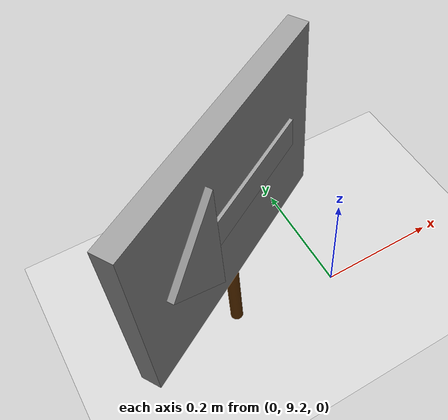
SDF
<sdf version="1.7">
 <world name="default">
  <model name="ground_plane">
   <static>1</static>
   <link name="link">
    <collision name="collision">
     <geometry><plane><normal>0 0 1</normal><size>100 100</size></plane></geometry>
     <surface>
      <contact><collide_bitmask>65535</collide_bitmask></contact>
      <friction><ode><mu>100</mu><mu2>50</mu2></ode></friction>
     </surface>
    </collision>
    <visual name="visual">
     <cast_shadows>0</cast_shadows>
     <geometry><plane><normal>0 0 1</normal><size>100 100</size></plane></geometry>
     <material>
      <script><uri>file://media/materials/scripts/gazebo.material</uri><name>Gazebo/Grey</name></script>
     </material>
    </visual>
   </link>
  </model>
  <model name="arrow_board_4">
   <link name="link_0">
    <inertial>
     <mass>1</mass>
     <inertia><ixx>0.145833</ixx><ixy>0</ixy><ixz>0</ixz><iyy>0.145833</iyy><iyz>0</iyz><izz>0.125</izz></inertia>
    </inertial>
    <pose>-0.01675 0.00625 0.1625 0 -0 0</pose>
    <gravity>0</gravity>
    <visual name="visual">
     <geometry><cylinder><radius>0.01</radius><length>0.3</length></cylinder></geometry>
     <material>
      <lighting>1</lighting>
      <script><uri>file://media/materials/scripts/gazebo.material</uri><name>Gazebo/Grey</name></script>
      <shader type="pixel"><normal_map>__default__</normal_map></shader>
      <ambient>0.4 0.2 0 1</ambient>
      <diffuse>0.4 0.2 0 1</diffuse>
      <specular>0 0 0 1</specular>
      <emissive>0 0 0 1</emissive>
     </material>
    </visual>
    <collision name="collision">
     <geometry><cylinder><radius>0.01</radius><length>0.3</length></cylinder></geometry>
     <surface>
      <friction>
       <ode><mu>1</mu><mu2>1</mu2><fdir1>0 0 0</fdir1><slip1>0</slip1><slip2>0</slip2></ode>
       <torsional>
        <coefficient>1</coefficient>
        <patch_radius>0</patch_radius>
        <surface_radius>0</surface_radius>
        <use_patch_radius>1</use_patch_radius>
        <ode><slip>0</slip></ode>
       </torsional>
      </friction>
      <bounce><restitution_coefficient>0</restitution_coefficient><threshold>1e+06</threshold></bounce>
      <contact>
       <collide_without_contact>0</collide_without_contact>
       <collide_without_contact_bitmask>1</collide_without_contact_bitmask>
       <collide_bitmask>1</collide_bitmask>
       <ode>
        <soft_cfm>0</soft_cfm>
        <soft_erp>0.2</soft_erp>
        <kp>1e+13</kp>
        <kd>1</kd>
        <max_vel>0.01</max_vel>
        <min_depth>0</min_depth>
       </ode>
       <bullet>
        <split_impulse>1</split_impulse>
        <split_impulse_penetration_threshold>-0.01</split_impulse_penetration_threshold>
        <soft_cfm>0</soft_cfm>
        <soft_erp>0.2</soft_erp>
        <kp>1e+13</kp>
        <kd>1</kd>
       </bullet>
      </contact>
     </surface>
    </collision>
   </link>
   <link name="link_1">
    <inertial>
     <mass>1</mass>
     <inertia>
      <ixx>0.166667</ixx>
      <ixy>0</ixy>
      <ixz>0</ixz>
      <iyy>0.166667</iyy>
      <iyz>0</iyz>
      <izz>0.166667</izz>
     </inertia>
    </inertial>
    <pose>-0.01675 0.00625 0.3125 0 -0 0</pose>
    <gravity>0</gravity>
    <visual name="visual">
     <geometry><box><size>0.4 0.03 0.3</size></box></geometry>
     <material>
      <lighting>1</lighting>
      <script><uri>file://media/materials/scripts/gazebo.material</uri><name>Gazebo/Grey</name></script>
      <shader type="pixel"><normal_map>__default__</normal_map></shader>
      <ambient>1 1 1 1</ambient>
      <diffuse>1 1 1 1</diffuse>
      <specular>1 1 1 1</specular>
      <emissive>0 0 0 1</emissive>
     </material>
    </visual>
    <collision name="collision">
     <geometry><box><size>0.4 0.03 0.3</size></box></geometry>
     <surface>
      <friction>
       <ode><mu>1</mu><mu2>1</mu2><fdir1>0 0 0</fdir1><slip1>0</slip1><slip2>0</slip2></ode>
       <torsional>
        <coefficient>1</coefficient>
        <patch_radius>0</patch_radius>
        <surface_radius>0</surface_radius>
        <use_patch_radius>1</use_patch_radius>
        <ode><slip>0</slip></ode>
       </torsional>
      </friction>
      <bounce><restitution_coefficient>0</restitution_coefficient><threshold>1e+06</threshold></bounce>
      <contact>
       <collide_without_contact>0</collide_without_contact>
       <collide_without_contact_bitmask>1</collide_without_contact_bitmask>
       <collide_bitmask>1</collide_bitmask>
       <ode>
        <soft_cfm>0</soft_cfm>
        <soft_erp>0.2</soft_erp>
        <kp>1e+13</kp>
        <kd>1</kd>
        <max_vel>0.01</max_vel>
        <min_depth>0</min_depth>
       </ode>
       <bullet>
        <split_impulse>1</split_impulse>
        <split_impulse_penetration_threshold>-0.01</split_impulse_penetration_threshold>
        <soft_cfm>0</soft_cfm>
        <soft_erp>0.2</soft_erp>
        <kp>1e+13</kp>
        <kd>1</kd>
       </bullet>
      </contact>
     </surface>
    </collision>
   </link>
   <link name="link_2">
    <inertial>
     <mass>1</mass>
     <inertia>
      <ixx>0.166667</ixx>
      <ixy>0</ixy>
      <ixz>0</ixz>
      <iyy>0.166667</iyy>
      <iyz>0</iyz>
      <izz>0.166667</izz>
     </inertia>
    </inertial>
    <pose>-0.06675 0.00625 0.3125 0 -0 0</pose>
    <gravity>0</gravity>
    <visual name="visual">
     <geometry><box><size>0.2 0.04 0.05</size></box></geometry>
     <material>
      <lighting>1</lighting>
      <script><uri>file://media/materials/scripts/gazebo.material</uri><name>Gazebo/Grey</name></script>
      <shader type="pixel"><normal_map>__default__</normal_map></shader>
      <ambient>0 0 0 1</ambient>
      <diffuse>0 0 0 1</diffuse>
      <specular>0 0 0 1</specular>
      <emissive>0 0 0 1</emissive>
     </material>
    </visual>
    <collision name="collision">
     <geometry><box><size>0.2 0.04 0.05</size></box></geometry>
     <surface>
      <friction>
       <ode><mu>1</mu><mu2>1</mu2><fdir1>0 0 0</fdir1><slip1>0</slip1><slip2>0</slip2></ode>
       <torsional>
        <coefficient>1</coefficient>
        <patch_radius>0</patch_radius>
        <surface_radius>0</surface_radius>
        <use_patch_radius>1</use_patch_radius>
        <ode><slip>0</slip></ode>
       </torsional>
      </friction>
      <bounce><restitution_coefficient>0</restitution_coefficient><threshold>1e+06</threshold></bounce>
      <contact>
       <collide_without_contact>0</collide_without_contact>
       <collide_without_contact_bitmask>1</collide_without_contact_bitmask>
       <collide_bitmask>1</collide_bitmask>
       <ode>
        <soft_cfm>0</soft_cfm>
        <soft_erp>0.2</soft_erp>
        <kp>1e+13</kp>
        <kd>1</kd>
        <max_vel>0.01</max_vel>
        <min_depth>0</min_depth>
       </ode>
       <bullet>
        <split_impulse>1</split_impulse>
        <split_impulse_penetration_threshold>-0.01</split_impulse_penetration_threshold>
        <soft_cfm>0</soft_cfm>
        <soft_erp>0.2</soft_erp>
        <kp>1e+13</kp>
        <kd>1</kd>
       </bullet>
      </contact>
     </surface>
    </collision>
   </link>
   <link name="link_4">
    <inertial>
     <mass>1</mass>
     <inertia>
      <ixx>0.166667</ixx>
      <ixy>0</ixy>
      <ixz>0</ixz>
      <iyy>0.166667</iyy>
      <iyz>0</iyz>
      <izz>0.166667</izz>
     </inertia>
    </inertial>
    <pose>0.033583 -0.01875 0.2125 0 -0 0</pose>
    <gravity>0</gravity>
    <visual name="visual">
     <geometry>
      <mesh>
       <uri>/home/ritesh/mobrob_ws/src/mobrob/meshes/arrow_head.stl</uri>
       <scale>0.001 0.001 0.001</scale>
      </mesh>
     </geometry>
     <material>
      <lighting>1</lighting>
      <script><uri>file://media/materials/scripts/gazebo.material</uri><name>Gazebo/Grey</name></script>
      <shader type="pixel"><normal_map>__default__</normal_map></shader>
      <ambient>0 0 0 1</ambient>
      <diffuse>0 0 0 1</diffuse>
      <specular>0 0 0 1</specular>
      <emissive>0 0 0 1</emissive>
     </material>
    </visual>
    <collision name="collision">
     <geometry>
      <mesh>
       <uri>/home/ritesh/mobrob_ws/src/mobrob/meshes/arrow_head.stl</uri>
       <scale>0.001 0.001 0.001</scale>
      </mesh>
     </geometry>
     <surface>
      <friction>
       <ode><mu>1</mu><mu2>1</mu2><fdir1>0 0 0</fdir1><slip1>0</slip1><slip2>0</slip2></ode>
       <torsional>
        <coefficient>1</coefficient>
        <patch_radius>0</patch_radius>
        <surface_radius>0</surface_radius>
        <use_patch_radius>1</use_patch_radius>
        <ode><slip>0</slip></ode>
       </torsional>
      </friction>
      <bounce><restitution_coefficient>0</restitution_coefficient><threshold>1e+06</threshold></bounce>
      <contact>
       <collide_without_contact>0</collide_without_contact>
       <collide_without_contact_bitmask>1</collide_without_contact_bitmask>
       <collide_bitmask>1</collide_bitmask>
       <ode>
        <soft_cfm>0</soft_cfm>
        <soft_erp>0.2</soft_erp>
        <kp>1e+13</kp>
        <kd>1</kd>
        <max_vel>0.01</max_vel>
        <min_depth>0</min_depth>
       </ode>
       <bullet>
        <split_impulse>1</split_impulse>
        <split_impulse_penetration_threshold>-0.01</split_impulse_penetration_threshold>
        <soft_cfm>0</soft_cfm>
        <soft_erp>0.2</soft_erp>
        <kp>1e+13</kp>
        <kd>1</kd>
       </bullet>
      </contact>
     </surface>
    </collision>
   </link>
   <static>0</static>
   <pose>-0.19157 9.21409 0 0 0 -2.60906</pose>
  </model>
 </world>
</sdf>
